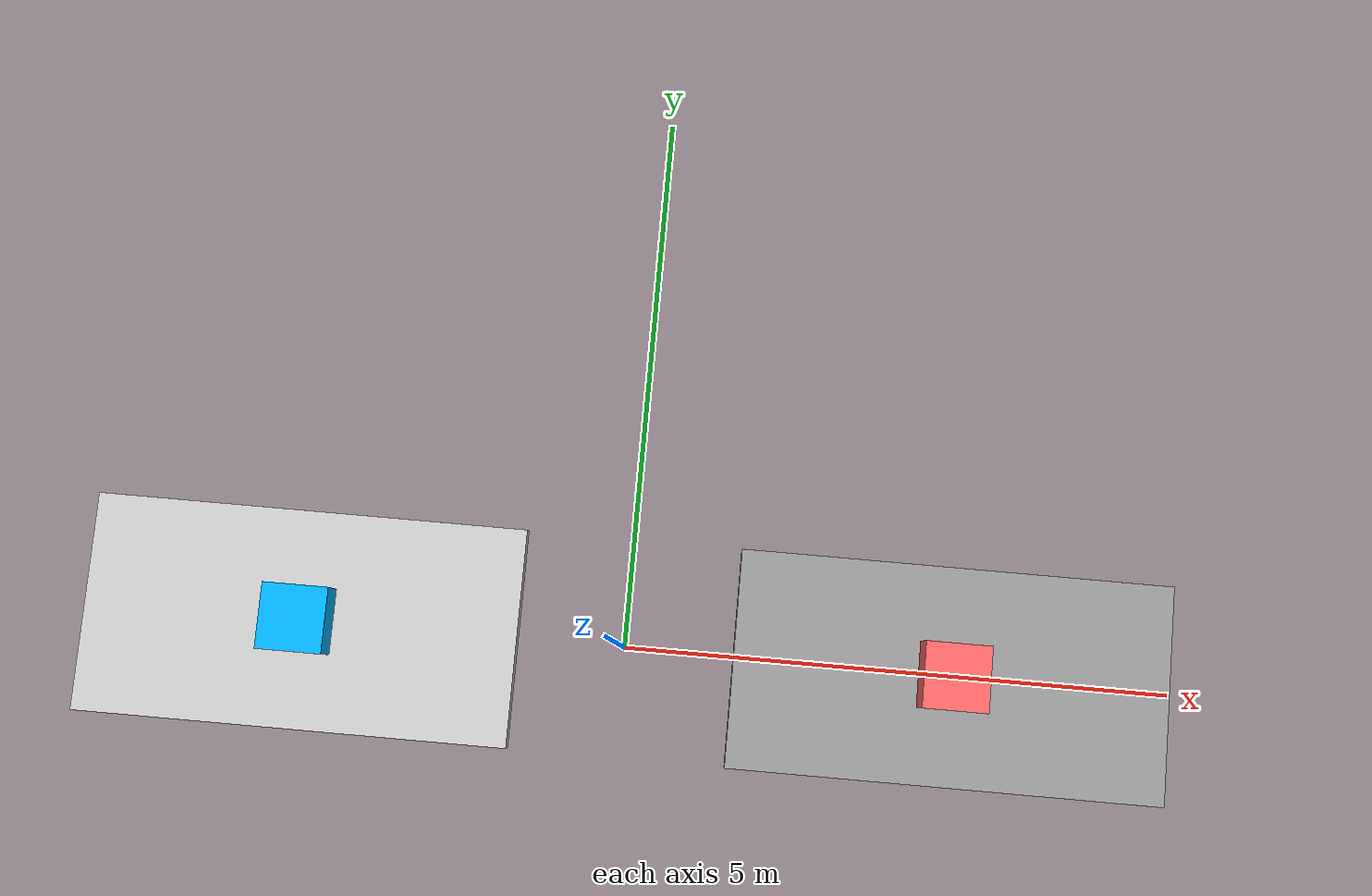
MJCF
<mujoco>
  <option gravity="0 0 -9.81"/>
  <worldbody>
    <body name="surface_low_friction" pos="-3 0 0">
      <geom type="box" size="2 1 0.1" rgba="0.8 0.8 0.8 1" friction="0.1 0.1 0.1"/>
    </body>
    <body name="surface_high_friction" pos="3 0 0">
      <geom type="box" size="2 1 0.1" rgba="0.6 0.6 0.6 1" friction="1.0 1.0 1.0"/>
    </body>
    <body name="low_friction_block" pos="-3 0 0.2">
      <geom type="box" size="0.3 0.3 0.3" density="1.5" rgba="0 0.7 1 1"/>
      <joint name="low_friction_joint" type="slide" axis="1 0 0"/>
    </body>
    <body name="high_friction_block" pos="3 0 0.2">
      <geom type="box" size="0.3 0.3 0.3" density="2.0" rgba="1 0.4 0.4 1"/>
      <joint name="high_friction_joint" type="slide" axis="1 0 0"/>
    </body>
  </worldbody>
</mujoco>
